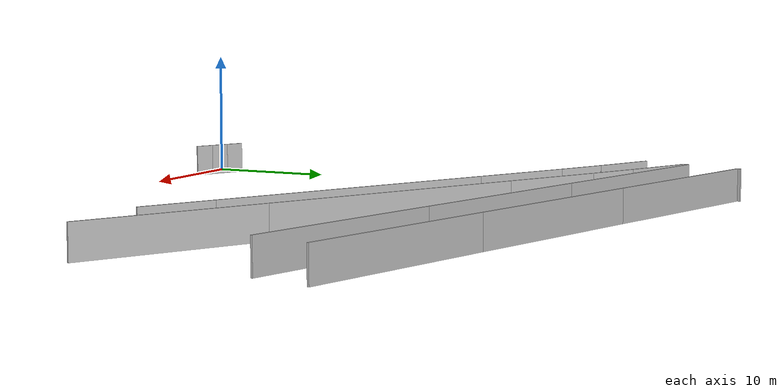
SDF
<?xml version="1.0" ?>
<sdf version="1.6">
  <model name="sps_1406">
    <pose frame="">0 0 0 0 -0 0</pose>
    <static>1</static>
    <self_collide>0</self_collide>
    <allow_auto_disable>0</allow_auto_disable>
    <link name="Wall110">
      <kinematic>0</kinematic>
      <gravity>1</gravity>
      <self_collide>0</self_collide>
      <collision name="collision">
        <geometry>
          <box>
            <size>5.77606 0.15 2.5</size>
          </box>
        </geometry>
        <pose frame="">0 0 0 0 -0 0</pose>
      </collision>
      <visual name="visual">
        <geometry>
          <box>
            <size>5.77606 0.15 2.5</size>
          </box>
        </geometry>
        <pose frame="">0 0 0 0 -0 0</pose>
        <cast_shadows>1</cast_shadows>
        <transparency>0.0</transparency>
      </visual>
      <pose frame="">3.36205 41.3309 1.25 0 -0 2.68958</pose>
    </link>
    <link name="Wall111">
      <kinematic>0</kinematic>
      <gravity>1</gravity>
      <self_collide>0</self_collide>
      <collision name="collision">
        <geometry>
          <box>
            <size>4.05741 0.15 2.5</size>
          </box>
        </geometry>
        <pose frame="">0 0 0 0 -0 0</pose>
      </collision>
      <visual name="visual">
        <geometry>
          <box>
            <size>4.05741 0.15 2.5</size>
          </box>
        </geometry>
        <pose frame="">0 0 0 0 -0 0</pose>
        <cast_shadows>1</cast_shadows>
        <transparency>0.0</transparency>
      </visual>
      <pose frame="">6.18914 36.0067 1.25 0 -0 2.66272</pose>
    </link>
    <link name="Wall193">
      <kinematic>0</kinematic>
      <gravity>1</gravity>
      <self_collide>0</self_collide>
      <collision name="collision">
        <geometry>
          <box>
            <size>5.74684 0.15 2.5</size>
          </box>
        </geometry>
        <pose frame="">0 0 0 0 -0 0</pose>
      </collision>
      <visual name="visual">
        <geometry>
          <box>
            <size>5.74684 0.15 2.5</size>
          </box>
        </geometry>
        <pose frame="">0 0 0 0 -0 0</pose>
        <cast_shadows>1</cast_shadows>
        <transparency>0.0</transparency>
      </visual>
      <pose frame="">36.9926 19.2679 1.25 0 -0 2.64268</pose>
    </link>
    <link name="Wall194">
      <kinematic>0</kinematic>
      <gravity>1</gravity>
      <self_collide>0</self_collide>
      <collision name="collision">
        <geometry>
          <box>
            <size>22.2511 0.15 2.5</size>
          </box>
        </geometry>
        <pose frame="">0 0 0 0 -0 0</pose>
      </collision>
      <visual name="visual">
        <geometry>
          <box>
            <size>22.2511 0.15 2.5</size>
          </box>
        </geometry>
        <pose frame="">0 0 0 0 -0 0</pose>
        <cast_shadows>1</cast_shadows>
        <transparency>0.0</transparency>
      </visual>
      <pose frame="">24.7001 25.9661 1.25 0 -0 2.64268</pose>
    </link>
    <link name="Wall347">
      <kinematic>0</kinematic>
      <gravity>1</gravity>
      <self_collide>0</self_collide>
      <collision name="collision">
        <geometry>
          <box>
            <size>0.299826 0.15 2.5</size>
          </box>
        </geometry>
        <pose frame="">0 0 0 0 -0 0</pose>
      </collision>
      <visual name="visual">
        <geometry>
          <box>
            <size>0.299826 0.15 2.5</size>
          </box>
        </geometry>
        <pose frame="">0 0 0 0 -0 0</pose>
        <cast_shadows>1</cast_shadows>
        <transparency>0.0</transparency>
      </visual>
      <pose frame="">2.19637 47.3405 1.25 0 -0 1.27499</pose>
    </link>
    <link name="Wall427">
      <kinematic>0</kinematic>
      <gravity>1</gravity>
      <self_collide>0</self_collide>
      <collision name="collision">
        <geometry>
          <box>
            <size>0.407591 0.15 2.5</size>
          </box>
        </geometry>
        <pose frame="">0 0 0 0 -0 0</pose>
      </collision>
      <visual name="visual">
        <geometry>
          <box>
            <size>0.407591 0.15 2.5</size>
          </box>
        </geometry>
        <pose frame="">0 0 0 0 -0 0</pose>
        <cast_shadows>1</cast_shadows>
        <transparency>0.0</transparency>
      </visual>
      <pose frame="">0.822654 42.7875 1.25 0 -0 1.27917</pose>
    </link>
    <link name="Wall428">
      <kinematic>0</kinematic>
      <gravity>1</gravity>
      <self_collide>0</self_collide>
      <collision name="collision">
        <geometry>
          <box>
            <size>4.14005 0.15 2.5</size>
          </box>
        </geometry>
        <pose frame="">0 0 0 0 -0 0</pose>
      </collision>
      <visual name="visual">
        <geometry>
          <box>
            <size>4.14005 0.15 2.5</size>
          </box>
        </geometry>
        <pose frame="">0 0 0 0 -0 0</pose>
        <cast_shadows>1</cast_shadows>
        <transparency>0.0</transparency>
      </visual>
      <pose frame="">7.79714 39.1155 1.25 0 -0 2.66264</pose>
    </link>
    <link name="Wall522">
      <kinematic>0</kinematic>
      <gravity>1</gravity>
      <self_collide>0</self_collide>
      <collision name="collision">
        <geometry>
          <box>
            <size>5.16735 0.15 2.5</size>
          </box>
        </geometry>
        <pose frame="">0 0 0 0 -0 0</pose>
      </collision>
      <visual name="visual">
        <geometry>
          <box>
            <size>5.16735 0.15 2.5</size>
          </box>
        </geometry>
        <pose frame="">0 0 0 0 -0 0</pose>
        <cast_shadows>1</cast_shadows>
        <transparency>0.0</transparency>
      </visual>
      <pose frame="">2.06444 38.07 1.25 0 -0 2.68957</pose>
    </link>
    <link name="Wall523">
      <kinematic>0</kinematic>
      <gravity>1</gravity>
      <self_collide>0</self_collide>
      <collision name="collision">
        <geometry>
          <box>
            <size>7.90481 0.15 2.5</size>
          </box>
        </geometry>
        <pose frame="">0 0 0 0 -0 0</pose>
      </collision>
      <visual name="visual">
        <geometry>
          <box>
            <size>7.90481 0.15 2.5</size>
          </box>
        </geometry>
        <pose frame="">0 0 0 0 -0 0</pose>
        <cast_shadows>1</cast_shadows>
        <transparency>0.0</transparency>
      </visual>
      <pose frame="">11.4602 33.1806 1.25 0 -0 2.64263</pose>
    </link>
    <link name="Wall526">
      <kinematic>0</kinematic>
      <gravity>1</gravity>
      <self_collide>0</self_collide>
      <collision name="collision">
        <geometry>
          <box>
            <size>20.3439 0.15 2.5</size>
          </box>
        </geometry>
        <pose frame="">0 0 0 0 -0 0</pose>
      </collision>
      <visual name="visual">
        <geometry>
          <box>
            <size>20.3439 0.15 2.5</size>
          </box>
        </geometry>
        <pose frame="">0 0 0 0 -0 0</pose>
        <cast_shadows>1</cast_shadows>
        <transparency>0.0</transparency>
      </visual>
      <pose frame="">25.5374 29.4958 1.25 0 0 -0.498918</pose>
    </link>
    <link name="Wall527">
      <kinematic>0</kinematic>
      <gravity>1</gravity>
      <self_collide>0</self_collide>
      <collision name="collision">
        <geometry>
          <box>
            <size>14.0774 0.15 2.5</size>
          </box>
        </geometry>
        <pose frame="">0 0 0 0 -0 0</pose>
      </collision>
      <visual name="visual">
        <geometry>
          <box>
            <size>14.0774 0.15 2.5</size>
          </box>
        </geometry>
        <pose frame="">0 0 0 0 -0 0</pose>
        <cast_shadows>1</cast_shadows>
        <transparency>0.0</transparency>
      </visual>
      <pose frame="">40.6501 21.2609 1.25 0 0 -0.498918</pose>
    </link>
    <link name="Wall608">
      <kinematic>0</kinematic>
      <gravity>1</gravity>
      <self_collide>0</self_collide>
      <collision name="collision">
        <geometry>
          <box>
            <size>7.93897 0.15 2.5</size>
          </box>
        </geometry>
        <pose frame="">0 0 0 0 -0 0</pose>
      </collision>
      <visual name="visual">
        <geometry>
          <box>
            <size>7.93897 0.15 2.5</size>
          </box>
        </geometry>
        <pose frame="">0 0 0 0 -0 0</pose>
        <cast_shadows>1</cast_shadows>
        <transparency>0.0</transparency>
      </visual>
      <pose frame="">13.1198 36.2622 1.25 0 0 -0.498924</pose>
    </link>
    <link name="Wall2694">
      <kinematic>0</kinematic>
      <gravity>1</gravity>
      <self_collide>0</self_collide>
      <collision name="collision">
        <geometry>
          <box>
            <size>15.854 0.15 2.5</size>
          </box>
        </geometry>
        <pose frame="">0 0 0 0 -0 0</pose>
      </collision>
      <visual name="visual">
        <geometry>
          <box>
            <size>15.854 0.15 2.5</size>
          </box>
        </geometry>
        <pose frame="">0 0 0 0 -0 0</pose>
        <cast_shadows>1</cast_shadows>
        <transparency>0.0</transparency>
      </visual>
      <pose frame="">39.145 32.65 1.25 0 -0 2.88329</pose>
    </link>
    <link name="Wall2695">
      <kinematic>0</kinematic>
      <gravity>1</gravity>
      <self_collide>0</self_collide>
      <collision name="collision">
        <geometry>
          <box>
            <size>15.8537 0.15 2.5</size>
          </box>
        </geometry>
        <pose frame="">0 0 0 0 -0 0</pose>
      </collision>
      <visual name="visual">
        <geometry>
          <box>
            <size>15.8537 0.15 2.5</size>
          </box>
        </geometry>
        <pose frame="">0 0 0 0 -0 0</pose>
        <cast_shadows>1</cast_shadows>
        <transparency>0.0</transparency>
      </visual>
      <pose frame="">23.8264 36.7345 1.25 0 -0 2.87875</pose>
    </link>
    <link name="Wall2696">
      <kinematic>0</kinematic>
      <gravity>1</gravity>
      <self_collide>0</self_collide>
      <collision name="collision">
        <geometry>
          <box>
            <size>15.8539 0.15 2.5</size>
          </box>
        </geometry>
        <pose frame="">0 0 0 0 -0 0</pose>
      </collision>
      <visual name="visual">
        <geometry>
          <box>
            <size>15.8539 0.15 2.5</size>
          </box>
        </geometry>
        <pose frame="">0 0 0 0 -0 0</pose>
        <cast_shadows>1</cast_shadows>
        <transparency>0.0</transparency>
      </visual>
      <pose frame="">8.52654 40.8884 1.25 0 -0 2.87422</pose>
    </link>
    <link name="Wall9339">
      <kinematic>0</kinematic>
      <gravity>1</gravity>
      <self_collide>0</self_collide>
      <collision name="collision">
        <geometry>
          <box>
            <size>15.7984 0.15 2.5</size>
          </box>
        </geometry>
        <pose frame="">0 0 0 0 -0 0</pose>
      </collision>
      <visual name="visual">
        <geometry>
          <box>
            <size>15.7984 0.15 2.5</size>
          </box>
        </geometry>
        <pose frame="">0 0 0 0 -0 0</pose>
        <cast_shadows>1</cast_shadows>
        <transparency>0.0</transparency>
      </visual>
      <pose frame="">40.2828 36.9002 1.25 0 -0 2.88327</pose>
    </link>
    <link name="Wall9340">
      <kinematic>0</kinematic>
      <gravity>1</gravity>
      <self_collide>0</self_collide>
      <collision name="collision">
        <geometry>
          <box>
            <size>15.7984 0.15 2.5</size>
          </box>
        </geometry>
        <pose frame="">0 0 0 0 -0 0</pose>
      </collision>
      <visual name="visual">
        <geometry>
          <box>
            <size>15.7984 0.15 2.5</size>
          </box>
        </geometry>
        <pose frame="">0 0 0 0 -0 0</pose>
        <cast_shadows>1</cast_shadows>
        <transparency>0.0</transparency>
      </visual>
      <pose frame="">25.0178 40.9706 1.25 0 -0 2.87874</pose>
    </link>
    <link name="Wall9341">
      <kinematic>0</kinematic>
      <gravity>1</gravity>
      <self_collide>0</self_collide>
      <collision name="collision">
        <geometry>
          <box>
            <size>15.7985 0.15 2.5</size>
          </box>
        </geometry>
        <pose frame="">0 0 0 0 -0 0</pose>
      </collision>
      <visual name="visual">
        <geometry>
          <box>
            <size>15.7985 0.15 2.5</size>
          </box>
        </geometry>
        <pose frame="">0 0 0 0 -0 0</pose>
        <cast_shadows>1</cast_shadows>
        <transparency>0.0</transparency>
      </visual>
      <pose frame="">9.77126 45.1101 1.25 0 -0 2.87422</pose>
    </link>
    <link name="Wall9790">
      <kinematic>0</kinematic>
      <gravity>1</gravity>
      <self_collide>0</self_collide>
      <collision name="collision">
        <geometry>
          <box>
            <size>1.49243 0.15 2.5</size>
          </box>
        </geometry>
        <pose frame="">0 0 0 0 -0 0</pose>
      </collision>
      <visual name="visual">
        <geometry>
          <box>
            <size>1.49243 0.15 2.5</size>
          </box>
        </geometry>
        <pose frame="">0 0 0 0 -0 0</pose>
        <cast_shadows>1</cast_shadows>
        <transparency>0.0</transparency>
      </visual>
      <pose frame="">1.23318 2.02037 1.25 0 0 -0.474731</pose>
    </link>
    <link name="Wall9791">
      <kinematic>0</kinematic>
      <gravity>1</gravity>
      <self_collide>0</self_collide>
      <collision name="collision">
        <geometry>
          <box>
            <size>1.4923 0.15 2.5</size>
          </box>
        </geometry>
        <pose frame="">0 0 0 0 -0 0</pose>
      </collision>
      <visual name="visual">
        <geometry>
          <box>
            <size>1.4923 0.15 2.5</size>
          </box>
        </geometry>
        <pose frame="">0 0 0 0 -0 0</pose>
        <cast_shadows>1</cast_shadows>
        <transparency>0.0</transparency>
      </visual>
      <pose frame="">2.56106 1.33928 1.25 0 0 -0.473123</pose>
    </link>
    <link name="Wall9792">
      <kinematic>0</kinematic>
      <gravity>1</gravity>
      <self_collide>0</self_collide>
      <collision name="collision">
        <geometry>
          <box>
            <size>1.49239 0.15 2.5</size>
          </box>
        </geometry>
        <pose frame="">0 0 0 0 -0 0</pose>
      </collision>
      <visual name="visual">
        <geometry>
          <box>
            <size>1.49239 0.15 2.5</size>
          </box>
        </geometry>
        <pose frame="">0 0 0 0 -0 0</pose>
        <cast_shadows>1</cast_shadows>
        <transparency>0.0</transparency>
      </visual>
      <pose frame="">3.89004 0.660384 1.25 0 0 -0.471439</pose>
    </link>
  </model>
</sdf>
